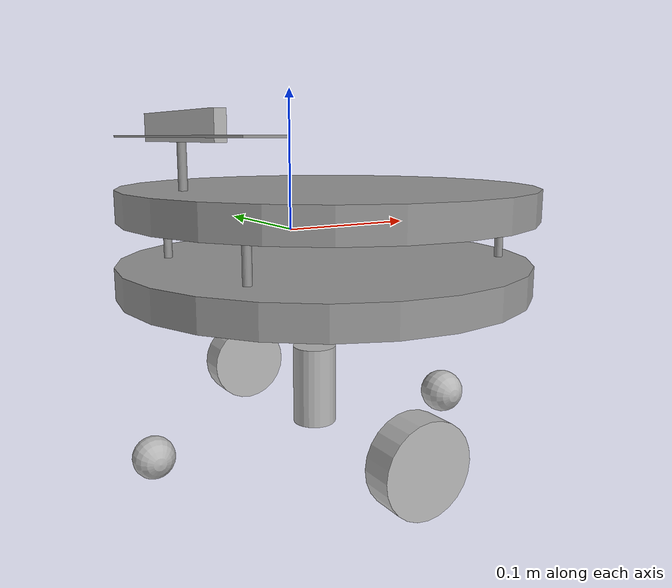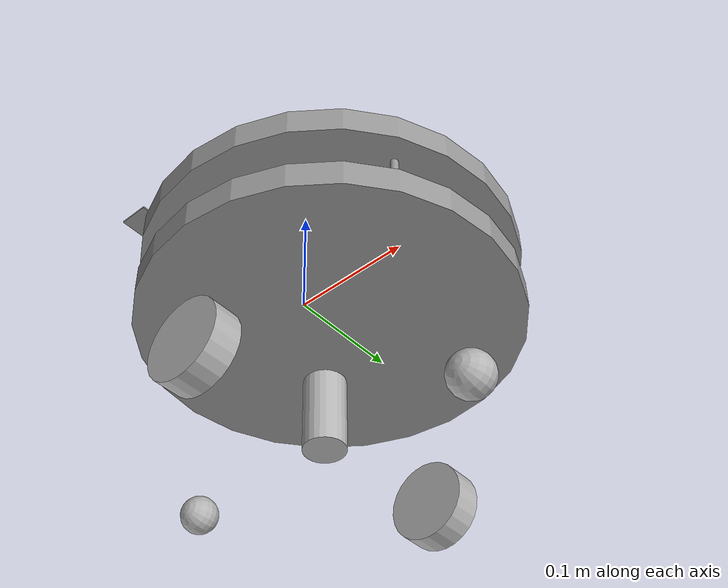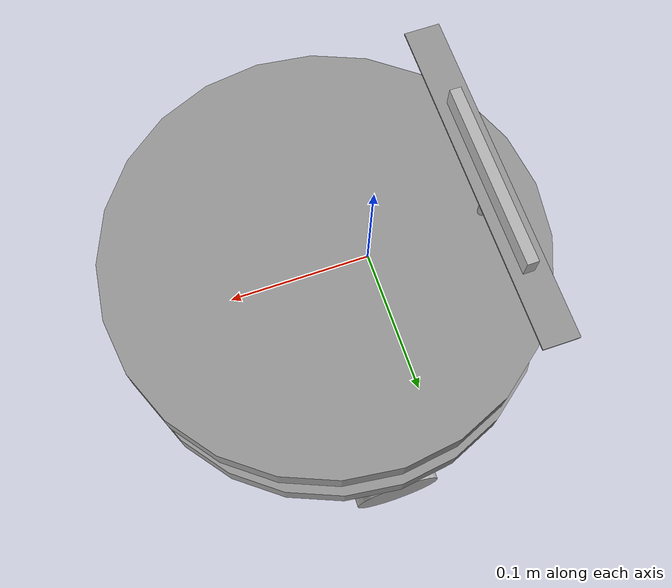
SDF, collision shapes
<?xml version='1.0'?>
<sdf version='1.6'>
  <model name='prototype-one'>
    <link name='link_0'>
      <pose frame=''>0.028789 -8.7e-05 -0.0353 0 -0 0</pose>
      <inertial>
        <mass>0.00216173</mass>
        <inertia>
          <ixx>1.27808e-05</ixx>
          <ixy>0</ixy>
          <ixz>0</ixz>
          <iyy>1.27808e-05</iyy>
          <iyz>0</iyz>
          <izz>2.53706e-05</izz>
        </inertia>
        <pose frame=''>0 0 0 0 -0 0</pose>
      </inertial>
      <visual name='visual'>
        <pose frame=''>0 0 0 0 -0 0</pose>
        <geometry>
          <cylinder>
            <radius>0.153207</radius>
            <length>0.0230083</length>
          </cylinder>
        </geometry>
        <material>
          <lighting>1</lighting>
          <script>
            <uri>file://media/materials/scripts/gazebo.material</uri>
            <name>Gazebo/Grey</name>
          </script>
          <ambient>0.3 0.3 0.3 1</ambient>
          <diffuse>0.7 0.7 0.7 1</diffuse>
          <specular>0.01 0.01 0.01 1</specular>
          <emissive>0 0 0 1</emissive>
        </material>
        <cast_shadows>1</cast_shadows>
        <transparency>0</transparency>
      </visual>
      <collision name='collision'>
        <laser_retro>0</laser_retro>
        <max_contacts>10</max_contacts>
        <pose frame=''>0 0 0 0 -0 0</pose>
        <geometry>
          <cylinder>
            <radius>0.153207</radius>
            <length>0.023008</length>
          </cylinder>
        </geometry>
        <surface>
          <friction>
            <ode>
              <mu>1</mu>
              <mu2>1</mu2>
              <fdir1>0 0 0</fdir1>
              <slip1>0</slip1>
              <slip2>0</slip2>
            </ode>
            <torsional>
              <coefficient>1</coefficient>
              <patch_radius>0</patch_radius>
              <surface_radius>0</surface_radius>
              <use_patch_radius>1</use_patch_radius>
              <ode>
                <slip>0</slip>
              </ode>
            </torsional>
          </friction>
          <bounce>
            <restitution_coefficient>0</restitution_coefficient>
            <threshold>1e+06</threshold>
          </bounce>
          <contact>
            <collide_without_contact>0</collide_without_contact>
            <collide_without_contact_bitmask>1</collide_without_contact_bitmask>
            <collide_bitmask>1</collide_bitmask>
            <ode>
              <soft_cfm>0</soft_cfm>
              <soft_erp>0.2</soft_erp>
              <kp>1e+13</kp>
              <kd>1</kd>
              <max_vel>0.01</max_vel>
              <min_depth>0</min_depth>
            </ode>
            <bullet>
              <split_impulse>1</split_impulse>
              <split_impulse_penetration_threshold>-0.01</split_impulse_penetration_threshold>
              <soft_cfm>0</soft_cfm>
              <soft_erp>0.2</soft_erp>
              <kp>1e+13</kp>
              <kd>1</kd>
            </bullet>
          </contact>
        </surface>
      </collision>
    </link>
    <link name='link_0_clone'>
      <pose frame=''>0.030894 -0.002135 0.019089 0 -0 0</pose>
      <inertial>
        <mass>0.00216173</mass>
        <inertia>
          <ixx>1.27808e-05</ixx>
          <ixy>0</ixy>
          <ixz>0</ixz>
          <iyy>1.27808e-05</iyy>
          <iyz>0</iyz>
          <izz>2.53706e-05</izz>
        </inertia>
        <pose frame=''>0 0 0 0 -0 0</pose>
      </inertial>
      <visual name='visual'>
        <pose frame=''>0 0 0 0 -0 0</pose>
        <geometry>
          <cylinder>
            <radius>0.153207</radius>
            <length>0.0230083</length>
          </cylinder>
        </geometry>
        <material>
          <lighting>1</lighting>
          <script>
            <uri>file://media/materials/scripts/gazebo.material</uri>
            <name>Gazebo/Grey</name>
          </script>
          <ambient>0.3 0.3 0.3 1</ambient>
          <diffuse>0.7 0.7 0.7 1</diffuse>
          <specular>0.01 0.01 0.01 1</specular>
          <emissive>0 0 0 1</emissive>
          <shader type='pixel'/>
        </material>
        <cast_shadows>1</cast_shadows>
        <transparency>0</transparency>
      </visual>
      <collision name='collision'>
        <laser_retro>0</laser_retro>
        <max_contacts>10</max_contacts>
        <pose frame=''>0 0 0 0 -0 0</pose>
        <geometry>
          <cylinder>
            <radius>0.153207</radius>
            <length>0.023008</length>
          </cylinder>
        </geometry>
        <surface>
          <friction>
            <ode>
              <mu>1</mu>
              <mu2>1</mu2>
              <fdir1>0 0 0</fdir1>
              <slip1>0</slip1>
              <slip2>0</slip2>
            </ode>
            <torsional>
              <coefficient>1</coefficient>
              <patch_radius>0</patch_radius>
              <surface_radius>0</surface_radius>
              <use_patch_radius>1</use_patch_radius>
              <ode>
                <slip>0</slip>
              </ode>
            </torsional>
          </friction>
          <bounce>
            <restitution_coefficient>0</restitution_coefficient>
            <threshold>1e+06</threshold>
          </bounce>
          <contact>
            <collide_without_contact>0</collide_without_contact>
            <collide_without_contact_bitmask>1</collide_without_contact_bitmask>
            <collide_bitmask>1</collide_bitmask>
            <ode>
              <soft_cfm>0</soft_cfm>
              <soft_erp>0.2</soft_erp>
              <kp>1e+13</kp>
              <kd>1</kd>
              <max_vel>0.01</max_vel>
              <min_depth>0</min_depth>
            </ode>
            <bullet>
              <split_impulse>1</split_impulse>
              <split_impulse_penetration_threshold>-0.01</split_impulse_penetration_threshold>
              <soft_cfm>0</soft_cfm>
              <soft_erp>0.2</soft_erp>
              <kp>1e+13</kp>
              <kd>1</kd>
            </bullet>
          </contact>
        </surface>
      </collision>
    </link>
    <link name='link_3_clone_clone'>
      <pose frame=''>-0.065714 -0.064813 0.001062 0 -0 0</pose>
      <inertial>
        <mass>1.96901e-06</mass>
        <inertia>
          <ixx>4.144e-10</ixx>
          <ixy>0</ixy>
          <ixz>0</ixz>
          <iyy>4.144e-10</iyy>
          <iyz>0</iyz>
          <izz>9.70022e-12</izz>
        </inertia>
        <pose frame=''>0 0 0 0 -0 0</pose>
      </inertial>
      <visual name='visual'>
        <pose frame=''>0 0 0 0 -0 0</pose>
        <geometry>
          <cylinder>
            <radius>0.00313882</radius>
            <length>0.0499609</length>
          </cylinder>
        </geometry>
        <material>
          <lighting>1</lighting>
          <script>
            <uri>file://media/materials/scripts/gazebo.material</uri>
            <name>Gazebo/Grey</name>
          </script>
          <ambient>0.3 0.3 0.3 1</ambient>
          <diffuse>0.7 0.7 0.7 1</diffuse>
          <specular>0.01 0.01 0.01 1</specular>
          <emissive>0 0 0 1</emissive>
          <shader type='pixel'/>
        </material>
        <cast_shadows>1</cast_shadows>
        <transparency>0</transparency>
      </visual>
      <collision name='collision'>
        <laser_retro>0</laser_retro>
        <max_contacts>10</max_contacts>
        <pose frame=''>0 0 0 0 -0 0</pose>
        <geometry>
          <cylinder>
            <radius>0.003139</radius>
            <length>0.049961</length>
          </cylinder>
        </geometry>
        <surface>
          <friction>
            <ode>
              <mu>1</mu>
              <mu2>1</mu2>
              <fdir1>0 0 0</fdir1>
              <slip1>0</slip1>
              <slip2>0</slip2>
            </ode>
            <torsional>
              <coefficient>1</coefficient>
              <patch_radius>0</patch_radius>
              <surface_radius>0</surface_radius>
              <use_patch_radius>1</use_patch_radius>
              <ode>
                <slip>0</slip>
              </ode>
            </torsional>
          </friction>
          <bounce>
            <restitution_coefficient>0</restitution_coefficient>
            <threshold>1e+06</threshold>
          </bounce>
          <contact>
            <collide_without_contact>0</collide_without_contact>
            <collide_without_contact_bitmask>1</collide_without_contact_bitmask>
            <collide_bitmask>1</collide_bitmask>
            <ode>
              <soft_cfm>0</soft_cfm>
              <soft_erp>0.2</soft_erp>
              <kp>1e+13</kp>
              <kd>1</kd>
              <max_vel>0.01</max_vel>
              <min_depth>0</min_depth>
            </ode>
            <bullet>
              <split_impulse>1</split_impulse>
              <split_impulse_penetration_threshold>-0.01</split_impulse_penetration_threshold>
              <soft_cfm>0</soft_cfm>
              <soft_erp>0.2</soft_erp>
              <kp>1e+13</kp>
              <kd>1</kd>
            </bullet>
          </contact>
        </surface>
      </collision>
    </link>
    <link name='link_3_clone_clone_clone'>
      <pose frame=''>-0.071438 0.06352 -0.004512 0 -0 0</pose>
      <inertial>
        <mass>1.96901e-06</mass>
        <inertia>
          <ixx>4.144e-10</ixx>
          <ixy>0</ixy>
          <ixz>0</ixz>
          <iyy>4.144e-10</iyy>
          <iyz>0</iyz>
          <izz>9.70022e-12</izz>
        </inertia>
        <pose frame=''>0 0 0 0 -0 0</pose>
      </inertial>
      <visual name='visual'>
        <pose frame=''>0 0 0 0 -0 0</pose>
        <geometry>
          <cylinder>
            <radius>0.00313882</radius>
            <length>0.0499609</length>
          </cylinder>
        </geometry>
        <material>
          <lighting>1</lighting>
          <script>
            <uri>file://media/materials/scripts/gazebo.material</uri>
            <name>Gazebo/Grey</name>
          </script>
          <ambient>0.3 0.3 0.3 1</ambient>
          <diffuse>0.7 0.7 0.7 1</diffuse>
          <specular>0.01 0.01 0.01 1</specular>
          <emissive>0 0 0 1</emissive>
          <shader type='pixel'/>
        </material>
        <cast_shadows>1</cast_shadows>
        <transparency>0</transparency>
      </visual>
      <collision name='collision'>
        <laser_retro>0</laser_retro>
        <max_contacts>10</max_contacts>
        <pose frame=''>0 0 0 0 -0 0</pose>
        <geometry>
          <cylinder>
            <radius>0.003139</radius>
            <length>0.049961</length>
          </cylinder>
        </geometry>
        <surface>
          <friction>
            <ode>
              <mu>1</mu>
              <mu2>1</mu2>
              <fdir1>0 0 0</fdir1>
              <slip1>0</slip1>
              <slip2>0</slip2>
            </ode>
            <torsional>
              <coefficient>1</coefficient>
              <patch_radius>0</patch_radius>
              <surface_radius>0</surface_radius>
              <use_patch_radius>1</use_patch_radius>
              <ode>
                <slip>0</slip>
              </ode>
            </torsional>
          </friction>
          <bounce>
            <restitution_coefficient>0</restitution_coefficient>
            <threshold>1e+06</threshold>
          </bounce>
          <contact>
            <collide_without_contact>0</collide_without_contact>
            <collide_without_contact_bitmask>1</collide_without_contact_bitmask>
            <collide_bitmask>1</collide_bitmask>
            <ode>
              <soft_cfm>0</soft_cfm>
              <soft_erp>0.2</soft_erp>
              <kp>1e+13</kp>
              <kd>1</kd>
              <max_vel>0.01</max_vel>
              <min_depth>0</min_depth>
            </ode>
            <bullet>
              <split_impulse>1</split_impulse>
              <split_impulse_penetration_threshold>-0.01</split_impulse_penetration_threshold>
              <soft_cfm>0</soft_cfm>
              <soft_erp>0.2</soft_erp>
              <kp>1e+13</kp>
              <kd>1</kd>
            </bullet>
          </contact>
        </surface>
      </collision>
    </link>
    <link name='link_3_clone_clone_clone_0'>
      <pose frame=''>0.146697 -0.063 0.001062 0 -0 0</pose>
      <inertial>
        <mass>1.96901e-06</mass>
        <inertia>
          <ixx>4.144e-10</ixx>
          <ixy>0</ixy>
          <ixz>0</ixz>
          <iyy>4.144e-10</iyy>
          <iyz>0</iyz>
          <izz>9.70022e-12</izz>
        </inertia>
        <pose frame=''>0 0 0 0 -0 0</pose>
      </inertial>
      <visual name='visual'>
        <pose frame=''>0 0 0 0 -0 0</pose>
        <geometry>
          <cylinder>
            <radius>0.00313882</radius>
            <length>0.0499609</length>
          </cylinder>
        </geometry>
        <material>
          <lighting>1</lighting>
          <script>
            <uri>file://media/materials/scripts/gazebo.material</uri>
            <name>Gazebo/Grey</name>
          </script>
          <ambient>0.3 0.3 0.3 1</ambient>
          <diffuse>0.7 0.7 0.7 1</diffuse>
          <specular>0.01 0.01 0.01 1</specular>
          <emissive>0 0 0 1</emissive>
          <shader type='pixel'/>
        </material>
        <cast_shadows>1</cast_shadows>
        <transparency>0</transparency>
      </visual>
      <collision name='collision'>
        <laser_retro>0</laser_retro>
        <max_contacts>10</max_contacts>
        <pose frame=''>0 0 0 0 -0 0</pose>
        <geometry>
          <cylinder>
            <radius>0.003139</radius>
            <length>0.049961</length>
          </cylinder>
        </geometry>
        <surface>
          <friction>
            <ode>
              <mu>1</mu>
              <mu2>1</mu2>
              <fdir1>0 0 0</fdir1>
              <slip1>0</slip1>
              <slip2>0</slip2>
            </ode>
            <torsional>
              <coefficient>1</coefficient>
              <patch_radius>0</patch_radius>
              <surface_radius>0</surface_radius>
              <use_patch_radius>1</use_patch_radius>
              <ode>
                <slip>0</slip>
              </ode>
            </torsional>
          </friction>
          <bounce>
            <restitution_coefficient>0</restitution_coefficient>
            <threshold>1e+06</threshold>
          </bounce>
          <contact>
            <collide_without_contact>0</collide_without_contact>
            <collide_without_contact_bitmask>1</collide_without_contact_bitmask>
            <collide_bitmask>1</collide_bitmask>
            <ode>
              <soft_cfm>0</soft_cfm>
              <soft_erp>0.2</soft_erp>
              <kp>1e+13</kp>
              <kd>1</kd>
              <max_vel>0.01</max_vel>
              <min_depth>0</min_depth>
            </ode>
            <bullet>
              <split_impulse>1</split_impulse>
              <split_impulse_penetration_threshold>-0.01</split_impulse_penetration_threshold>
              <soft_cfm>0</soft_cfm>
              <soft_erp>0.2</soft_erp>
              <kp>1e+13</kp>
              <kd>1</kd>
            </bullet>
          </contact>
        </surface>
      </collision>
    </link>
    <link name='link_3_clone_clone_clone_0_clone'>
      <pose frame=''>0.149024 0.059898 0.001062 0 -0 0</pose>
      <inertial>
        <mass>1.96901e-06</mass>
        <inertia>
          <ixx>4.144e-10</ixx>
          <ixy>0</ixy>
          <ixz>0</ixz>
          <iyy>4.144e-10</iyy>
          <iyz>0</iyz>
          <izz>9.70022e-12</izz>
        </inertia>
        <pose frame=''>0 0 0 0 -0 0</pose>
      </inertial>
      <visual name='visual'>
        <pose frame=''>0 0 0 0 -0 0</pose>
        <geometry>
          <cylinder>
            <radius>0.00313882</radius>
            <length>0.0499609</length>
          </cylinder>
        </geometry>
        <material>
          <lighting>1</lighting>
          <script>
            <uri>file://media/materials/scripts/gazebo.material</uri>
            <name>Gazebo/Grey</name>
          </script>
          <ambient>0.3 0.3 0.3 1</ambient>
          <diffuse>0.7 0.7 0.7 1</diffuse>
          <specular>0.01 0.01 0.01 1</specular>
          <emissive>0 0 0 1</emissive>
          <shader type='pixel'/>
        </material>
        <cast_shadows>1</cast_shadows>
        <transparency>0</transparency>
      </visual>
      <collision name='collision'>
        <laser_retro>0</laser_retro>
        <max_contacts>10</max_contacts>
        <pose frame=''>0 0 0 0 -0 0</pose>
        <geometry>
          <cylinder>
            <radius>0.003139</radius>
            <length>0.049961</length>
          </cylinder>
        </geometry>
        <surface>
          <friction>
            <ode>
              <mu>1</mu>
              <mu2>1</mu2>
              <fdir1>0 0 0</fdir1>
              <slip1>0</slip1>
              <slip2>0</slip2>
            </ode>
            <torsional>
              <coefficient>1</coefficient>
              <patch_radius>0</patch_radius>
              <surface_radius>0</surface_radius>
              <use_patch_radius>1</use_patch_radius>
              <ode>
                <slip>0</slip>
              </ode>
            </torsional>
          </friction>
          <bounce>
            <restitution_coefficient>0</restitution_coefficient>
            <threshold>1e+06</threshold>
          </bounce>
          <contact>
            <collide_without_contact>0</collide_without_contact>
            <collide_without_contact_bitmask>1</collide_without_contact_bitmask>
            <collide_bitmask>1</collide_bitmask>
            <ode>
              <soft_cfm>0</soft_cfm>
              <soft_erp>0.2</soft_erp>
              <kp>1e+13</kp>
              <kd>1</kd>
              <max_vel>0.01</max_vel>
              <min_depth>0</min_depth>
            </ode>
            <bullet>
              <split_impulse>1</split_impulse>
              <split_impulse_penetration_threshold>-0.01</split_impulse_penetration_threshold>
              <soft_cfm>0</soft_cfm>
              <soft_erp>0.2</soft_erp>
              <kp>1e+13</kp>
              <kd>1</kd>
            </bullet>
          </contact>
        </surface>
      </collision>
    </link>
    <link name='link_3_clone_clone_clone_clone'>
      <pose frame=''>-0.079042 0.004974 0.048556 0 -0 0</pose>
      <inertial>
        <mass>1.96901e-06</mass>
        <inertia>
          <ixx>4.144e-10</ixx>
          <ixy>0</ixy>
          <ixz>0</ixz>
          <iyy>4.144e-10</iyy>
          <iyz>0</iyz>
          <izz>9.70022e-12</izz>
        </inertia>
        <pose frame=''>0 0 0 0 -0 0</pose>
      </inertial>
      <visual name='visual'>
        <pose frame=''>0 0 0 0 -0 0</pose>
        <geometry>
          <cylinder>
            <radius>0.00313882</radius>
            <length>0.0499609</length>
          </cylinder>
        </geometry>
        <material>
          <lighting>1</lighting>
          <script>
            <uri>file://media/materials/scripts/gazebo.material</uri>
            <name>Gazebo/Grey</name>
          </script>
          <ambient>0.3 0.3 0.3 1</ambient>
          <diffuse>0.7 0.7 0.7 1</diffuse>
          <specular>0.01 0.01 0.01 1</specular>
          <emissive>0 0 0 1</emissive>
          <shader type='pixel'/>
        </material>
        <cast_shadows>1</cast_shadows>
        <transparency>0</transparency>
      </visual>
      <collision name='collision'>
        <laser_retro>0</laser_retro>
        <max_contacts>10</max_contacts>
        <pose frame=''>0 0 0 0 -0 0</pose>
        <geometry>
          <cylinder>
            <radius>0.003139</radius>
            <length>0.049961</length>
          </cylinder>
        </geometry>
        <surface>
          <friction>
            <ode>
              <mu>1</mu>
              <mu2>1</mu2>
              <fdir1>0 0 0</fdir1>
              <slip1>0</slip1>
              <slip2>0</slip2>
            </ode>
            <torsional>
              <coefficient>1</coefficient>
              <patch_radius>0</patch_radius>
              <surface_radius>0</surface_radius>
              <use_patch_radius>1</use_patch_radius>
              <ode>
                <slip>0</slip>
              </ode>
            </torsional>
          </friction>
          <bounce>
            <restitution_coefficient>0</restitution_coefficient>
            <threshold>1e+06</threshold>
          </bounce>
          <contact>
            <collide_without_contact>0</collide_without_contact>
            <collide_without_contact_bitmask>1</collide_without_contact_bitmask>
            <collide_bitmask>1</collide_bitmask>
            <ode>
              <soft_cfm>0</soft_cfm>
              <soft_erp>0.2</soft_erp>
              <kp>1e+13</kp>
              <kd>1</kd>
              <max_vel>0.01</max_vel>
              <min_depth>0</min_depth>
            </ode>
            <bullet>
              <split_impulse>1</split_impulse>
              <split_impulse_penetration_threshold>-0.01</split_impulse_penetration_threshold>
              <soft_cfm>0</soft_cfm>
              <soft_erp>0.2</soft_erp>
              <kp>1e+13</kp>
              <kd>1</kd>
            </bullet>
          </contact>
        </surface>
      </collision>
    </link>
    <link name='link_4'>
      <pose frame=''>-0.080686 -0.00308 0.066458 0 -0 0</pose>
      <inertial>
        <mass>9.2091e-06</mass>
        <inertia>
          <ixx>4.40167e-08</ixx>
          <ixy>0</ixy>
          <ixz>0</ixz>
          <iyy>4.92919e-10</iyy>
          <iyz>0</iyz>
          <izz>4.45061e-08</izz>
        </inertia>
        <pose frame=''>0 0 0 0 -0 0</pose>
      </inertial>
      <visual name='visual'>
        <pose frame=''>0 0 0 0 -0 0</pose>
        <geometry>
          <box>
            <size>0.025289 0.239482 0.00149</size>
          </box>
        </geometry>
        <material>
          <lighting>1</lighting>
          <script>
            <uri>file://media/materials/scripts/gazebo.material</uri>
            <name>Gazebo/Grey</name>
          </script>
          <ambient>0.3 0.3 0.3 1</ambient>
          <diffuse>0.7 0.7 0.7 1</diffuse>
          <specular>0.01 0.01 0.01 1</specular>
          <emissive>0 0 0 1</emissive>
        </material>
        <cast_shadows>1</cast_shadows>
        <transparency>0</transparency>
      </visual>
      <collision name='collision'>
        <laser_retro>0</laser_retro>
        <max_contacts>10</max_contacts>
        <pose frame=''>0 0 0 0 -0 0</pose>
        <geometry>
          <box>
            <size>0.025289 0.239482 0.00149</size>
          </box>
        </geometry>
        <surface>
          <friction>
            <ode>
              <mu>1</mu>
              <mu2>1</mu2>
              <fdir1>0 0 0</fdir1>
              <slip1>0</slip1>
              <slip2>0</slip2>
            </ode>
            <torsional>
              <coefficient>1</coefficient>
              <patch_radius>0</patch_radius>
              <surface_radius>0</surface_radius>
              <use_patch_radius>1</use_patch_radius>
              <ode>
                <slip>0</slip>
              </ode>
            </torsional>
          </friction>
          <bounce>
            <restitution_coefficient>0</restitution_coefficient>
            <threshold>1e+06</threshold>
          </bounce>
          <contact>
            <collide_without_contact>0</collide_without_contact>
            <collide_without_contact_bitmask>1</collide_without_contact_bitmask>
            <collide_bitmask>1</collide_bitmask>
            <ode>
              <soft_cfm>0</soft_cfm>
              <soft_erp>0.2</soft_erp>
              <kp>1e+13</kp>
              <kd>1</kd>
              <max_vel>0.01</max_vel>
              <min_depth>0</min_depth>
            </ode>
            <bullet>
              <split_impulse>1</split_impulse>
              <split_impulse_penetration_threshold>-0.01</split_impulse_penetration_threshold>
              <soft_cfm>0</soft_cfm>
              <soft_erp>0.2</soft_erp>
              <kp>1e+13</kp>
              <kd>1</kd>
            </bullet>
          </contact>
        </surface>
      </collision>
    </link>
    <model name='create'>
      <link name='base'>
        <inertial>
          <pose frame=''>0.001453 -0.000453 0.029787 0 -0 0</pose>
          <inertia>
            <ixx>0.05864</ixx>
            <ixy>0.000124</ixy>
            <ixz>0.000615</ixz>
            <iyy>0.058786</iyy>
            <iyz>1.4e-05</iyz>
            <izz>1.53244</izz>
          </inertia>
          <mass>2.234</mass>
        </inertial>
        <collision name='base_collision'>
          <pose frame=''>0 0 0.0478 0 -0 0</pose>
          <geometry>
            <cylinder>
              <radius>0.016495</radius>
              <length>0.061163</length>
            </cylinder>
          </geometry>
        </collision>
        <visual name='base_visual'>
          <pose frame=''>0 0 0.0478 0 -0 0</pose>
          <geometry>
            <mesh>
              <uri>model://create/meshes/create_body.dae</uri>
            </mesh>
          </geometry>
        </visual>
        <collision name='front_wheel_collision'>
          <pose frame=''>0.13 0 0.017 -0 1.5707 1.5707</pose>
          <geometry>
            <sphere>
              <radius>0.018</radius>
            </sphere>
          </geometry>
          <surface>
            <friction>
              <ode>
                <mu>0</mu>
                <mu2>0</mu2>
                <fdir1>0 0 0</fdir1>
                <slip1>0</slip1>
                <slip2>0</slip2>
              </ode>
            </friction>
          </surface>
        </collision>
        <visual name='front_wheel_visual'>
          <pose frame=''>0.13 0 0.017 -0 1.5707 1.5707</pose>
          <geometry>
            <sphere>
              <radius>0.009</radius>
            </sphere>
          </geometry>
        </visual>
        <collision name='rear_wheel_collision'>
          <pose frame=''>-0.13 0 0.017 -0 1.5707 1.5707</pose>
          <geometry>
            <sphere>
              <radius>0.015</radius>
            </sphere>
          </geometry>
          <surface>
            <friction>
              <ode>
                <mu>0</mu>
                <mu2>0</mu2>
                <fdir1>0 0 0</fdir1>
                <slip1>0</slip1>
                <slip2>0</slip2>
              </ode>
            </friction>
          </surface>
        </collision>
        <visual name='rear_wheel_visual'>
          <pose frame=''>-0.13 0 0.017 -0 1.5707 1.5707</pose>
          <geometry>
            <sphere>
              <radius>0.0075</radius>
            </sphere>
          </geometry>
        </visual>
        <sensor name='left_cliff_sensor' type='ray'>
          <pose frame=''>0.07 0.14 0.027 0 1.57079 0</pose>
          <ray>
            <scan>
              <horizontal>
                <samples>1</samples>
                <resolution>1</resolution>
                <min_angle>0</min_angle>
                <max_angle>0</max_angle>
              </horizontal>
            </scan>
            <range>
              <min>0.01</min>
              <max>0.04</max>
              <resolution>0.1</resolution>
            </range>
          </ray>
        </sensor>
        <sensor name='leftfront_cliff_sensor' type='ray'>
          <pose frame=''>0.15 0.04 0.027 0 1.57079 0</pose>
          <ray>
            <scan>
              <horizontal>
                <samples>1</samples>
                <resolution>1</resolution>
                <min_angle>0</min_angle>
                <max_angle>0</max_angle>
              </horizontal>
            </scan>
            <range>
              <min>0.01</min>
              <max>0.04</max>
              <resolution>0.1</resolution>
            </range>
          </ray>
        </sensor>
        <sensor name='right_cliff_sensor' type='ray'>
          <pose frame=''>0.07 -0.14 0.027 0 1.57079 0</pose>
          <ray>
            <scan>
              <horizontal>
                <samples>1</samples>
                <resolution>1</resolution>
                <min_angle>0</min_angle>
                <max_angle>0</max_angle>
              </horizontal>
            </scan>
            <range>
              <min>0.01</min>
              <max>0.04</max>
              <resolution>0.1</resolution>
            </range>
          </ray>
        </sensor>
        <sensor name='rightfront_cliff_sensor' type='ray'>
          <pose frame=''>0.15 -0.04 0.027 0 1.57079 0</pose>
          <ray>
            <scan>
              <horizontal>
                <samples>1</samples>
                <resolution>1</resolution>
                <min_angle>0</min_angle>
                <max_angle>0</max_angle>
              </horizontal>
            </scan>
            <range>
              <min>0.01</min>
              <max>0.04</max>
              <resolution>0.1</resolution>
            </range>
          </ray>
        </sensor>
        <sensor name='wall_sensor' type='ray'>
          <pose frame=''>0.09 -0.12 0.059 0 0 -1</pose>
          <ray>
            <scan>
              <horizontal>
                <samples>1</samples>
                <resolution>1</resolution>
                <min_angle>0</min_angle>
                <max_angle>0</max_angle>
              </horizontal>
            </scan>
            <range>
              <min>0.016</min>
              <max>0.04</max>
              <resolution>0.1</resolution>
            </range>
          </ray>
        </sensor>
      </link>
      <link name='left_wheel'>
        <pose frame=''>0 0.13 0.032 0 -0 0</pose>
        <inertial>
          <inertia>
            <ixx>0.001</ixx>
            <ixy>0</ixy>
            <ixz>0</ixz>
            <iyy>0.001</iyy>
            <iyz>0</iyz>
            <izz>0.001</izz>
          </inertia>
          <mass>0.01</mass>
        </inertial>
        <collision name='collision'>
          <pose frame=''>0 0 0 -0 1.5707 1.5707</pose>
          <geometry>
            <cylinder>
              <radius>0.033</radius>
              <length>0.023</length>
            </cylinder>
          </geometry>
          <surface>
            <friction>
              <ode>
                <mu>10</mu>
                <mu2>10</mu2>
                <fdir1>0 0 0</fdir1>
                <slip1>0</slip1>
                <slip2>0</slip2>
              </ode>
            </friction>
          </surface>
        </collision>
        <visual name='visual'>
          <pose frame=''>0 0 0 -0 1.5707 1.5707</pose>
          <geometry>
            <cylinder>
              <radius>0.033</radius>
              <length>0.023</length>
            </cylinder>
          </geometry>
        </visual>
      </link>
      <link name='right_wheel'>
        <pose frame=''>0 -0.13 0.032 0 -0 0</pose>
        <inertial>
          <inertia>
            <ixx>0.001</ixx>
            <ixy>0</ixy>
            <ixz>0</ixz>
            <iyy>0.001</iyy>
            <iyz>0</iyz>
            <izz>0.001</izz>
          </inertia>
          <mass>0.01</mass>
        </inertial>
        <collision name='collision'>
          <pose frame=''>0 0 0 -0 1.5707 1.5707</pose>
          <geometry>
            <cylinder>
              <radius>0.033</radius>
              <length>0.023</length>
            </cylinder>
          </geometry>
          <surface>
            <friction>
              <ode>
                <mu>10</mu>
                <mu2>10</mu2>
                <fdir1>0 0 0</fdir1>
                <slip1>0</slip1>
                <slip2>0</slip2>
              </ode>
            </friction>
          </surface>
        </collision>
        <visual name='visual'>
          <pose frame=''>0 0 0 -0 1.5707 1.5707</pose>
          <geometry>
            <cylinder>
              <radius>0.033</radius>
              <length>0.023</length>
            </cylinder>
          </geometry>
        </visual>
      </link>
      <joint name='left_wheel' type='revolute'>
        <parent>base</parent>
        <child>left_wheel</child>
        <axis>
          <xyz>0 1 0</xyz>
          <use_parent_model_frame>1</use_parent_model_frame>
          <limit>
            <lower>-1e+16</lower>
            <upper>1e+16</upper>
          </limit>
        </axis>
      </joint>
      <joint name='right_wheel' type='revolute'>
        <parent>base</parent>
        <child>right_wheel</child>
        <axis>
          <xyz>0 1 0</xyz>
          <use_parent_model_frame>1</use_parent_model_frame>
          <limit>
            <lower>-1e+16</lower>
            <upper>1e+16</upper>
          </limit>
        </axis>
      </joint>
      <pose frame=''>0.021208 0.002361 -0.170352 0 -0 0</pose>
    </model>
    <model name='intel_realsense_r200'>
      <pose frame=''>-0.079734 0.002361 0.072876 0 -0 0</pose>
      <link name='link'>
        <inertial>
          <mass>0.2</mass>
          <inertia>
            <ixx>0.00014395</ixx>
            <ixy>0</ixy>
            <ixz>0</ixz>
            <iyy>3.84e-06</iyy>
            <iyz>0</iyz>
            <izz>0.00014136</izz>
          </inertia>
        </inertial>
        <collision name='collision'>
          <geometry>
            <box>
              <size>0.008 0.13 0.02</size>
            </box>
          </geometry>
          <surface>
            <contact>
              <ode>
                <max_vel>0.1</max_vel>
                <min_depth>0.001</min_depth>
              </ode>
            </contact>
            <friction>
              <ode>
                <mu>0.4</mu>
                <mu2>0.4</mu2>
              </ode>
            </friction>
          </surface>
        </collision>
        <visual name='visual'>
          <geometry>
            <mesh>
              <uri>model://intel_realsense_r200/meshes/realsense_r200.dae</uri>
            </mesh>
          </geometry>
        </visual>
        <sensor name='camera' type='depth'>
          <pose frame=''>0.001 -0.045 0.003 0 -0 0</pose>
          <update_rate>60</update_rate>
          <camera name='__default__'>
            <horizontal_fov>0.976899</horizontal_fov>
            <image>
              <width>480</width>
              <height>360</height>
              <format>R8G8B8</format>
            </image>
            <clip>
              <near>0.5</near>
              <far>10</far>
            </clip>
          </camera>
        </sensor>
      </link>
    </model>
    <static>0</static>
    <allow_auto_disable>1</allow_auto_disable>
  </model>
</sdf>
